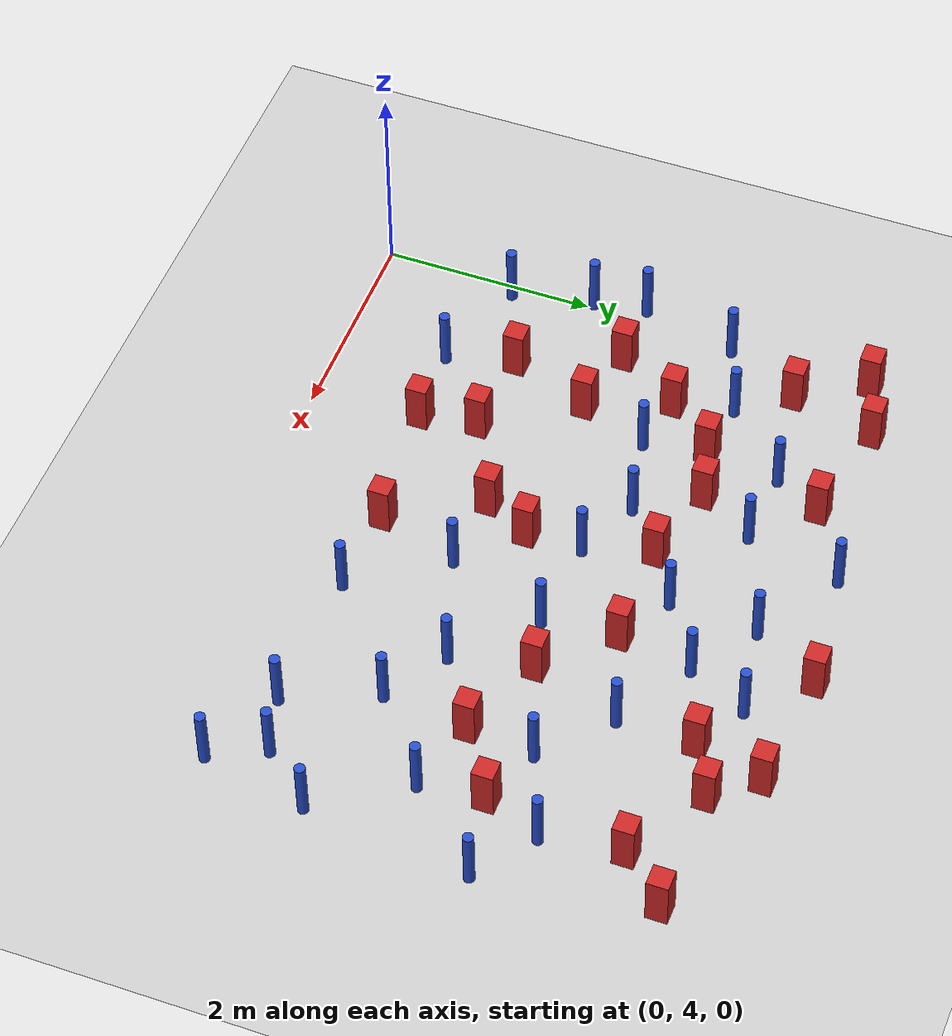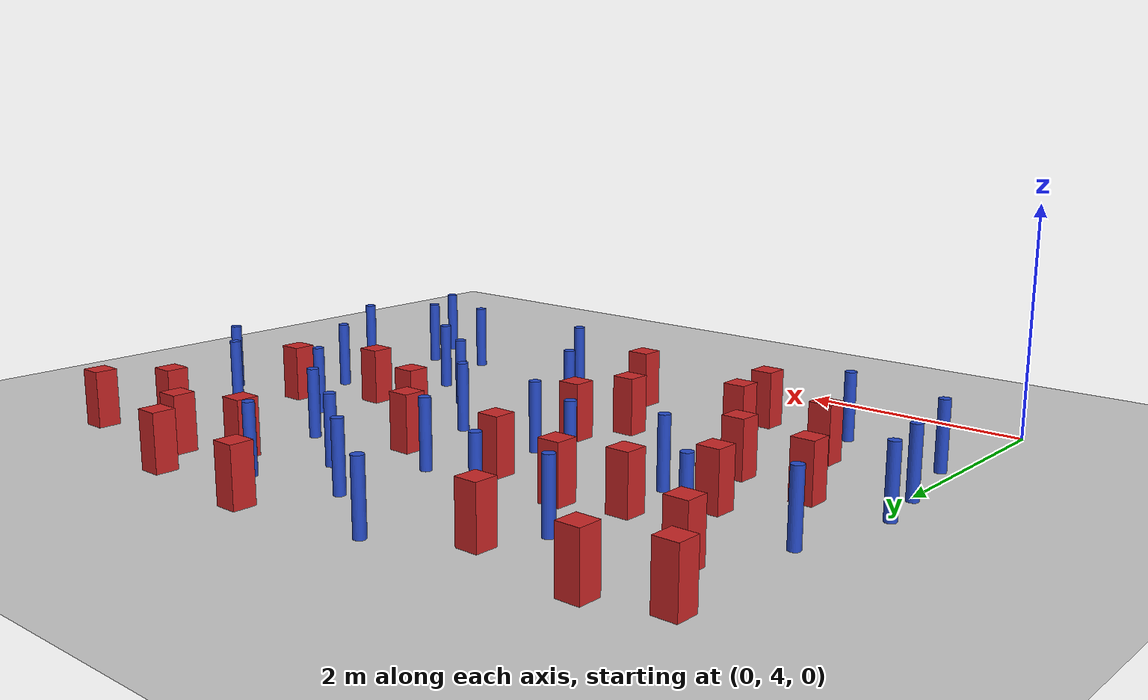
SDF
<sdf version="1.6">
 <world name="default">
  <model name="ground_plane">
   <static>1</static>
   <link name="link">
    <collision name="collision">
     <geometry><plane><normal>0 0 1</normal><size>100 100</size></plane></geometry>
     <surface><friction><ode><mu>100</mu><mu2>50</mu2></ode></friction></surface>
    </collision>
    <visual name="visual">
     <cast_shadows>0</cast_shadows>
     <geometry><plane><normal>0 0 1</normal><size>100 100</size></plane></geometry>
     <material>
      <ambient>1.0 1.0 1.0 1.0</ambient>
      <diffuse>0.8 0.8 0.8 1.0</diffuse>
      <specular>0.01 0.01 0.01 1.000000</specular>
     </material>
    </visual>
   </link>
  </model>
  <model name="pole_obstacle0">
   <static>true</static>
   <pose>3.38088649552 5.95492401007 2.88873142074e-08 -9.90536689859e-09 4.60219948989e-07 -1.20965994961e-07</pose>
   <link name="link">
    <pose>0 0 0.3 0 -0 0</pose>
    <inertial>
     <mass>1</mass>
     <inertia><ixx>0.145833</ixx><ixy>0</ixy><ixz>0</ixz><iyy>0.145833</iyy><iyz>0</iyz><izz>0.125</izz></inertia>
    </inertial>
    <collision name="collision">
     <geometry><cylinder><radius>0.05</radius><length>.6</length></cylinder></geometry>
    </collision>
    <visual name="visual">
     <geometry><cylinder><radius>0.05</radius><length>.6</length></cylinder></geometry>
     <material>
      <script><name>Gazebo/Blue</name><uri>file://media/materials/scripts/gazebo.material</uri></script>
     </material>
    </visual>
   </link>
  </model>
  <model name="pole_obstacle2">
   <static>true</static>
   <pose>1.10299102913 4.98660373761 2.88873142074e-08 -9.90536689852e-09 4.60219948989e-07 -1.2096599496e-07</pose>
   <link name="link">
    <pose>0 0 0.3 0 -0 0</pose>
    <inertial>
     <mass>1</mass>
     <inertia><ixx>0.145833</ixx><ixy>0</ixy><ixz>0</ixz><iyy>0.145833</iyy><iyz>0</iyz><izz>0.125</izz></inertia>
    </inertial>
    <collision name="collision">
     <geometry><cylinder><radius>0.05</radius><length>.6</length></cylinder></geometry>
    </collision>
    <visual name="visual">
     <geometry><cylinder><radius>0.05</radius><length>.6</length></cylinder></geometry>
     <material>
      <script><name>Gazebo/Blue</name><uri>file://media/materials/scripts/gazebo.material</uri></script>
     </material>
    </visual>
   </link>
  </model>
  <model name="pole_obstacle5">
   <static>true</static>
   <pose>1.46848950987 8.38332093595 2.88873142074e-08 -9.90536690474e-09 4.60219948974e-07 -1.2096599497e-07</pose>
   <link name="link">
    <pose>0 0 0.3 0 -0 0</pose>
    <inertial>
     <mass>1</mass>
     <inertia><ixx>0.145833</ixx><ixy>0</ixy><ixz>0</ixz><iyy>0.145833</iyy><iyz>0</iyz><izz>0.125</izz></inertia>
    </inertial>
    <collision name="collision">
     <geometry><cylinder><radius>0.05</radius><length>.6</length></cylinder></geometry>
    </collision>
    <visual name="visual">
     <geometry><cylinder><radius>0.05</radius><length>.6</length></cylinder></geometry>
     <material>
      <script><name>Gazebo/Blue</name><uri>file://media/materials/scripts/gazebo.material</uri></script>
     </material>
    </visual>
   </link>
  </model>
  <model name="square_post_obstacle13">
   <static>true</static>
   <pose>0.95175389864 5.64146808033 8.22691968438e-08 7.2212513382e-06 -7.54495500217e-07 2.29674213826e-05</pose>
   <link name="link">
    <pose>0 0 0.25 0 -0 0</pose>
    <inertial>
     <mass>100</mass>
     <inertia>
      <ixx>0.166667</ixx>
      <ixy>0</ixy>
      <ixz>0</ixz>
      <iyy>0.166667</iyy>
      <iyz>0</iyz>
      <izz>0.166667</izz>
     </inertia>
    </inertial>
    <collision name="collision"><geometry><box><size>.2 .2 .5</size></box></geometry></collision>
    <visual name="visual">
     <geometry><box><size>.2 .2 .5</size></box></geometry>
     <material>
      <script><name>Gazebo/Red</name><uri>file://media/materials/scripts/gazebo.material</uri></script>
     </material>
    </visual>
   </link>
  </model>
  <model name="pole_obstacle13">
   <static>true</static>
   <pose>5.78583768149 6.56034018607 2.88873142074e-08 -9.90536690842e-09 4.60219948965e-07 -1.20965994976e-07</pose>
   <link name="link">
    <pose>0 0 0.3 0 -0 0</pose>
    <inertial>
     <mass>1</mass>
     <inertia><ixx>0.145833</ixx><ixy>0</ixy><ixz>0</ixz><iyy>0.145833</iyy><iyz>0</iyz><izz>0.125</izz></inertia>
    </inertial>
    <collision name="collision">
     <geometry><cylinder><radius>0.05</radius><length>.6</length></cylinder></geometry>
    </collision>
    <visual name="visual">
     <geometry><cylinder><radius>0.05</radius><length>.6</length></cylinder></geometry>
     <material>
      <script><name>Gazebo/Blue</name><uri>file://media/materials/scripts/gazebo.material</uri></script>
     </material>
    </visual>
   </link>
  </model>
  <model name="pole_obstacle23">
   <static>true</static>
   <pose>5.14635958631 7.3870239795 2.88873142074e-08 -9.90536690842e-09 4.60219948965e-07 -1.20965994976e-07</pose>
   <link name="link">
    <pose>0 0 0.3 0 -0 0</pose>
    <inertial>
     <mass>1</mass>
     <inertia><ixx>0.145833</ixx><ixy>0</ixy><ixz>0</ixz><iyy>0.145833</iyy><iyz>0</iyz><izz>0.125</izz></inertia>
    </inertial>
    <collision name="collision">
     <geometry><cylinder><radius>0.05</radius><length>.6</length></cylinder></geometry>
    </collision>
    <visual name="visual">
     <geometry><cylinder><radius>0.05</radius><length>.6</length></cylinder></geometry>
     <material>
      <script><name>Gazebo/Blue</name><uri>file://media/materials/scripts/gazebo.material</uri></script>
     </material>
    </visual>
   </link>
  </model>
  <model name="pole_obstacle26">
   <static>true</static>
   <pose>6.13167573041 4.73643035613 2.88873142074e-08 -9.90536690842e-09 4.60219948965e-07 -1.20965994976e-07</pose>
   <link name="link">
    <pose>0 0 0.3 0 -0 0</pose>
    <inertial>
     <mass>1</mass>
     <inertia><ixx>0.145833</ixx><ixy>0</ixy><ixz>0</ixz><iyy>0.145833</iyy><iyz>0</iyz><izz>0.125</izz></inertia>
    </inertial>
    <collision name="collision">
     <geometry><cylinder><radius>0.05</radius><length>.6</length></cylinder></geometry>
    </collision>
    <visual name="visual">
     <geometry><cylinder><radius>0.05</radius><length>.6</length></cylinder></geometry>
     <material>
      <script><name>Gazebo/Blue</name><uri>file://media/materials/scripts/gazebo.material</uri></script>
     </material>
    </visual>
   </link>
  </model>
  <model name="pole_obstacle30">
   <static>true</static>
   <pose>1.47866368526 7.08194506718 2.88873142074e-08 -9.90536689852e-09 4.60219948989e-07 -1.2096599496e-07</pose>
   <link name="link">
    <pose>0 0 0.3 0 -0 0</pose>
    <inertial>
     <mass>1</mass>
     <inertia><ixx>0.145833</ixx><ixy>0</ixy><ixz>0</ixz><iyy>0.145833</iyy><iyz>0</iyz><izz>0.125</izz></inertia>
    </inertial>
    <collision name="collision">
     <geometry><cylinder><radius>0.05</radius><length>.6</length></cylinder></geometry>
    </collision>
    <visual name="visual">
     <geometry><cylinder><radius>0.05</radius><length>.6</length></cylinder></geometry>
     <material>
      <script><name>Gazebo/Blue</name><uri>file://media/materials/scripts/gazebo.material</uri></script>
     </material>
    </visual>
   </link>
  </model>
  <model name="square_post_obstacle43">
   <static>true</static>
   <pose>0.938892802857 7.19326686032 8.22691968438e-08 7.2212513382e-06 -7.54495500217e-07 2.29674213826e-05</pose>
   <link name="link">
    <pose>0 0 0.25 0 -0 0</pose>
    <inertial>
     <mass>100</mass>
     <inertia>
      <ixx>0.166667</ixx>
      <ixy>0</ixy>
      <ixz>0</ixz>
      <iyy>0.166667</iyy>
      <iyz>0</iyz>
      <izz>0.166667</izz>
     </inertia>
    </inertial>
    <collision name="collision"><geometry><box><size>.2 .2 .5</size></box></geometry></collision>
    <visual name="visual">
     <geometry><box><size>.2 .2 .5</size></box></geometry>
     <material>
      <script><name>Gazebo/Red</name><uri>file://media/materials/scripts/gazebo.material</uri></script>
     </material>
    </visual>
   </link>
  </model>
  <model name="pole_obstacle47">
   <static>true</static>
   <pose>5.88428137847 5.24185333775 2.88873142074e-08 -9.90536690842e-09 4.60219948965e-07 -1.20965994976e-07</pose>
   <link name="link">
    <pose>0 0 0.3 0 -0 0</pose>
    <inertial>
     <mass>1</mass>
     <inertia><ixx>0.145833</ixx><ixy>0</ixy><ixz>0</ixz><iyy>0.145833</iyy><iyz>0</iyz><izz>0.125</izz></inertia>
    </inertial>
    <collision name="collision">
     <geometry><cylinder><radius>0.05</radius><length>.6</length></cylinder></geometry>
    </collision>
    <visual name="visual">
     <geometry><cylinder><radius>0.05</radius><length>.6</length></cylinder></geometry>
     <material>
      <script><name>Gazebo/Blue</name><uri>file://media/materials/scripts/gazebo.material</uri></script>
     </material>
    </visual>
   </link>
  </model>
  <model name="square_post_obstacle59">
   <static>true</static>
   <pose>2.64501227558 6.01338427412 8.22691968438e-08 7.2212513382e-06 -7.54495500217e-07 2.29674213826e-05</pose>
   <link name="link">
    <pose>0 0 0.25 0 -0 0</pose>
    <inertial>
     <mass>100</mass>
     <inertia>
      <ixx>0.166667</ixx>
      <ixy>0</ixy>
      <ixz>0</ixz>
      <iyy>0.166667</iyy>
      <iyz>0</iyz>
      <izz>0.166667</izz>
     </inertia>
    </inertial>
    <collision name="collision"><geometry><box><size>.2 .2 .5</size></box></geometry></collision>
    <visual name="visual">
     <geometry><box><size>.2 .2 .5</size></box></geometry>
     <material>
      <script><name>Gazebo/Red</name><uri>file://media/materials/scripts/gazebo.material</uri></script>
     </material>
    </visual>
   </link>
  </model>
  <model name="square_post_obstacle69">
   <static>true</static>
   <pose>1.79964512608 5.58982391042 8.22691968438e-08 7.2212513382e-06 -7.54495500217e-07 2.29674213826e-05</pose>
   <link name="link">
    <pose>0 0 0.25 0 -0 0</pose>
    <inertial>
     <mass>100</mass>
     <inertia>
      <ixx>0.166667</ixx>
      <ixy>0</ixy>
      <ixz>0</ixz>
      <iyy>0.166667</iyy>
      <iyz>0</iyz>
      <izz>0.166667</izz>
     </inertia>
    </inertial>
    <collision name="collision"><geometry><box><size>.2 .2 .5</size></box></geometry></collision>
    <visual name="visual">
     <geometry><box><size>.2 .2 .5</size></box></geometry>
     <material>
      <script><name>Gazebo/Red</name><uri>file://media/materials/scripts/gazebo.material</uri></script>
     </material>
    </visual>
   </link>
  </model>
  <model name="square_post_obstacle73">
   <static>true</static>
   <pose>4.55959793608 8.65913546967 8.22691968438e-08 7.22125133819e-06 -7.54495500217e-07 2.29674213826e-05</pose>
   <link name="link">
    <pose>0 0 0.25 0 -0 0</pose>
    <inertial>
     <mass>100</mass>
     <inertia>
      <ixx>0.166667</ixx>
      <ixy>0</ixy>
      <ixz>0</ixz>
      <iyy>0.166667</iyy>
      <iyz>0</iyz>
      <izz>0.166667</izz>
     </inertia>
    </inertial>
    <collision name="collision"><geometry><box><size>.2 .2 .5</size></box></geometry></collision>
    <visual name="visual">
     <geometry><box><size>.2 .2 .5</size></box></geometry>
     <material>
      <script><name>Gazebo/Red</name><uri>file://media/materials/scripts/gazebo.material</uri></script>
     </material>
    </visual>
   </link>
  </model>
  <model name="square_post_obstacle75">
   <static>true</static>
   <pose>3.68525917704 7.64865767655 8.22691968438e-08 7.2212513382e-06 -7.54495500217e-07 2.29674213826e-05</pose>
   <link name="link">
    <pose>0 0 0.25 0 -0 0</pose>
    <inertial>
     <mass>100</mass>
     <inertia>
      <ixx>0.166667</ixx>
      <ixy>0</ixy>
      <ixz>0</ixz>
      <iyy>0.166667</iyy>
      <iyz>0</iyz>
      <izz>0.166667</izz>
     </inertia>
    </inertial>
    <collision name="collision"><geometry><box><size>.2 .2 .5</size></box></geometry></collision>
    <visual name="visual">
     <geometry><box><size>.2 .2 .5</size></box></geometry>
     <material>
      <script><name>Gazebo/Red</name><uri>file://media/materials/scripts/gazebo.material</uri></script>
     </material>
    </visual>
   </link>
  </model>
  <model name="pole_obstacle78">
   <static>true</static>
   <pose>2.200280439 8.34595612283 2.88873142074e-08 -9.90536692318e-09 4.6021994893e-07 -1.20965994988e-07</pose>
   <link name="link">
    <pose>0 0 0.3 0 -0 0</pose>
    <inertial>
     <mass>1</mass>
     <inertia><ixx>0.145833</ixx><ixy>0</ixy><ixz>0</ixz><iyy>0.145833</iyy><iyz>0</iyz><izz>0.125</izz></inertia>
    </inertial>
    <collision name="collision">
     <geometry><cylinder><radius>0.05</radius><length>.6</length></cylinder></geometry>
    </collision>
    <visual name="visual">
     <geometry><cylinder><radius>0.05</radius><length>.6</length></cylinder></geometry>
     <material>
      <script><name>Gazebo/Blue</name><uri>file://media/materials/scripts/gazebo.material</uri></script>
     </material>
    </visual>
   </link>
  </model>
  <model name="square_post_obstacle82">
   <static>true</static>
   <pose>6.2535723111 8.92052852105 8.22691968438e-08 7.22125133819e-06 -7.54495500217e-07 2.29674213826e-05</pose>
   <link name="link">
    <pose>0 0 0.25 0 -0 0</pose>
    <inertial>
     <mass>100</mass>
     <inertia>
      <ixx>0.166667</ixx>
      <ixy>0</ixy>
      <ixz>0</ixz>
      <iyy>0.166667</iyy>
      <iyz>0</iyz>
      <izz>0.166667</izz>
     </inertia>
    </inertial>
    <collision name="collision"><geometry><box><size>.2 .2 .5</size></box></geometry></collision>
    <visual name="visual">
     <geometry><box><size>.2 .2 .5</size></box></geometry>
     <material>
      <script><name>Gazebo/Red</name><uri>file://media/materials/scripts/gazebo.material</uri></script>
     </material>
    </visual>
   </link>
  </model>
  <model name="pole_obstacle92">
   <static>true</static>
   <pose>5.94006798841 7.72018438921 2.88873142074e-08 -9.90536690842e-09 4.60219948965e-07 -1.20965994976e-07</pose>
   <link name="link">
    <pose>0 0 0.3 0 -0 0</pose>
    <inertial>
     <mass>1</mass>
     <inertia><ixx>0.145833</ixx><ixy>0</ixy><ixz>0</ixz><iyy>0.145833</iyy><iyz>0</iyz><izz>0.125</izz></inertia>
    </inertial>
    <collision name="collision">
     <geometry><cylinder><radius>0.05</radius><length>.6</length></cylinder></geometry>
    </collision>
    <visual name="visual">
     <geometry><cylinder><radius>0.05</radius><length>.6</length></cylinder></geometry>
     <material>
      <script><name>Gazebo/Blue</name><uri>file://media/materials/scripts/gazebo.material</uri></script>
     </material>
    </visual>
   </link>
  </model>
  <model name="square_post_obstacle95">
   <static>true</static>
   <pose>5.08554293708 6.75795700899 8.22691968438e-08 7.2212513382e-06 -7.54495500217e-07 2.29674213826e-05</pose>
   <link name="link">
    <pose>0 0 0.25 0 -0 0</pose>
    <inertial>
     <mass>100</mass>
     <inertia>
      <ixx>0.166667</ixx>
      <ixy>0</ixy>
      <ixz>0</ixz>
      <iyy>0.166667</iyy>
      <iyz>0</iyz>
      <izz>0.166667</izz>
     </inertia>
    </inertial>
    <collision name="collision"><geometry><box><size>.2 .2 .5</size></box></geometry></collision>
    <visual name="visual">
     <geometry><box><size>.2 .2 .5</size></box></geometry>
     <material>
      <script><name>Gazebo/Red</name><uri>file://media/materials/scripts/gazebo.material</uri></script>
     </material>
    </visual>
   </link>
  </model>
  <model name="pole_obstacle114">
   <static>true</static>
   <pose>4.07547584275 8.92687675746 2.88873142074e-08 -9.9053668967e-09 4.60219948993e-07 -1.20965994957e-07</pose>
   <link name="link">
    <pose>0 0 0.3 0 -0 0</pose>
    <inertial>
     <mass>1</mass>
     <inertia><ixx>0.145833</ixx><ixy>0</ixy><ixz>0</ixz><iyy>0.145833</iyy><iyz>0</iyz><izz>0.125</izz></inertia>
    </inertial>
    <collision name="collision">
     <geometry><cylinder><radius>0.05</radius><length>.6</length></cylinder></geometry>
    </collision>
    <visual name="visual">
     <geometry><cylinder><radius>0.05</radius><length>.6</length></cylinder></geometry>
     <material>
      <script><name>Gazebo/Blue</name><uri>file://media/materials/scripts/gazebo.material</uri></script>
     </material>
    </visual>
   </link>
  </model>
  <model name="pole_obstacle116">
   <static>true</static>
   <pose>3.75448452573 6.93231385805 2.88873142074e-08 -9.90536689859e-09 4.60219948989e-07 -1.20965994961e-07</pose>
   <link name="link">
    <pose>0 0 0.3 0 -0 0</pose>
    <inertial>
     <mass>1</mass>
     <inertia><ixx>0.145833</ixx><ixy>0</ixy><ixz>0</ixz><iyy>0.145833</iyy><iyz>0</iyz><izz>0.125</izz></inertia>
    </inertial>
    <collision name="collision">
     <geometry><cylinder><radius>0.05</radius><length>.6</length></cylinder></geometry>
    </collision>
    <visual name="visual">
     <geometry><cylinder><radius>0.05</radius><length>.6</length></cylinder></geometry>
     <material>
      <script><name>Gazebo/Blue</name><uri>file://media/materials/scripts/gazebo.material</uri></script>
     </material>
    </visual>
   </link>
  </model>
  <model name="square_post_obstacle103">
   <static>true</static>
   <pose>3.57993323454 9.41809294122 8.22691968438e-08 7.22125133819e-06 -7.54495500217e-07 2.29674213826e-05</pose>
   <link name="link">
    <pose>0 0 0.25 0 -0 0</pose>
    <inertial>
     <mass>100</mass>
     <inertia>
      <ixx>0.166667</ixx>
      <ixy>0</ixy>
      <ixz>0</ixz>
      <iyy>0.166667</iyy>
      <iyz>0</iyz>
      <izz>0.166667</izz>
     </inertia>
    </inertial>
    <collision name="collision"><geometry><box><size>.2 .2 .5</size></box></geometry></collision>
    <visual name="visual">
     <geometry><box><size>.2 .2 .5</size></box></geometry>
     <material>
      <script><name>Gazebo/Red</name><uri>file://media/materials/scripts/gazebo.material</uri></script>
     </material>
    </visual>
   </link>
  </model>
  <model name="square_post_obstacle106">
   <static>true</static>
   <pose>0.0813641973204 8.83876345615 8.22691968438e-08 7.22125133819e-06 -7.54495500217e-07 2.29674213826e-05</pose>
   <link name="link">
    <pose>0 0 0.25 0 -0 0</pose>
    <inertial>
     <mass>100</mass>
     <inertia>
      <ixx>0.166667</ixx>
      <ixy>0</ixy>
      <ixz>0</ixz>
      <iyy>0.166667</iyy>
      <iyz>0</iyz>
      <izz>0.166667</izz>
     </inertia>
    </inertial>
    <collision name="collision"><geometry><box><size>.2 .2 .5</size></box></geometry></collision>
    <visual name="visual">
     <geometry><box><size>.2 .2 .5</size></box></geometry>
     <material>
      <script><name>Gazebo/Red</name><uri>file://media/materials/scripts/gazebo.material</uri></script>
     </material>
    </visual>
   </link>
  </model>
  <model name="pole_obstacle119">
   <static>true</static>
   <pose>3.21026652588 8.76508350712 2.88873142074e-08 -9.90536692318e-09 4.6021994893e-07 -1.20965994988e-07</pose>
   <link name="link">
    <pose>0 0 0.3 0 -0 0</pose>
    <inertial>
     <mass>1</mass>
     <inertia><ixx>0.145833</ixx><ixy>0</ixy><ixz>0</ixz><iyy>0.145833</iyy><iyz>0</iyz><izz>0.125</izz></inertia>
    </inertial>
    <collision name="collision">
     <geometry><cylinder><radius>0.05</radius><length>.6</length></cylinder></geometry>
    </collision>
    <visual name="visual">
     <geometry><cylinder><radius>0.05</radius><length>.6</length></cylinder></geometry>
     <material>
      <script><name>Gazebo/Blue</name><uri>file://media/materials/scripts/gazebo.material</uri></script>
     </material>
    </visual>
   </link>
  </model>
  <model name="square_post_obstacle108">
   <static>true</static>
   <pose>3.13506172635 5.17868784558 8.22691968438e-08 7.2212513382e-06 -7.54495500217e-07 2.29674213826e-05</pose>
   <link name="link">
    <pose>0 0 0.25 0 -0 0</pose>
    <inertial>
     <mass>100</mass>
     <inertia>
      <ixx>0.166667</ixx>
      <ixy>0</ixy>
      <ixz>0</ixz>
      <iyy>0.166667</iyy>
      <iyz>0</iyz>
      <izz>0.166667</izz>
     </inertia>
    </inertial>
    <collision name="collision"><geometry><box><size>.2 .2 .5</size></box></geometry></collision>
    <visual name="visual">
     <geometry><box><size>.2 .2 .5</size></box></geometry>
     <material>
      <script><name>Gazebo/Red</name><uri>file://media/materials/scripts/gazebo.material</uri></script>
     </material>
    </visual>
   </link>
  </model>
  <model name="square_post_obstacle111">
   <static>true</static>
   <pose>1.70246118494 8.84544357507 8.22691968438e-08 7.22125133819e-06 -7.54495500217e-07 2.29674213826e-05</pose>
   <link name="link">
    <pose>0 0 0.25 0 -0 0</pose>
    <inertial>
     <mass>100</mass>
     <inertia>
      <ixx>0.166667</ixx>
      <ixy>0</ixy>
      <ixz>0</ixz>
      <iyy>0.166667</iyy>
      <iyz>0</iyz>
      <izz>0.166667</izz>
     </inertia>
    </inertial>
    <collision name="collision"><geometry><box><size>.2 .2 .5</size></box></geometry></collision>
    <visual name="visual">
     <geometry><box><size>.2 .2 .5</size></box></geometry>
     <material>
      <script><name>Gazebo/Red</name><uri>file://media/materials/scripts/gazebo.material</uri></script>
     </material>
    </visual>
   </link>
  </model>
  <model name="pole_obstacle126">
   <static>true</static>
   <pose>2.40459212481 9.25607514439 2.88873142074e-08 -9.90536692318e-09 4.6021994893e-07 -1.20965994988e-07</pose>
   <link name="link">
    <pose>0 0 0.3 0 -0 0</pose>
    <inertial>
     <mass>1</mass>
     <inertia><ixx>0.145833</ixx><ixy>0</ixy><ixz>0</ixz><iyy>0.145833</iyy><iyz>0</iyz><izz>0.125</izz></inertia>
    </inertial>
    <collision name="collision">
     <geometry><cylinder><radius>0.05</radius><length>.6</length></cylinder></geometry>
    </collision>
    <visual name="visual">
     <geometry><cylinder><radius>0.05</radius><length>.6</length></cylinder></geometry>
     <material>
      <script><name>Gazebo/Blue</name><uri>file://media/materials/scripts/gazebo.material</uri></script>
     </material>
    </visual>
   </link>
  </model>
  <model name="square_post_obstacle124">
   <static>true</static>
   <pose>4.73186916265 9.31856514922 8.22691968438e-08 7.22125133819e-06 -7.54495500217e-07 2.29674213826e-05</pose>
   <link name="link">
    <pose>0 0 0.25 0 -0 0</pose>
    <inertial>
     <mass>100</mass>
     <inertia>
      <ixx>0.166667</ixx>
      <ixy>0</ixy>
      <ixz>0</ixz>
      <iyy>0.166667</iyy>
      <iyz>0</iyz>
      <izz>0.166667</izz>
     </inertia>
    </inertial>
    <collision name="collision"><geometry><box><size>.2 .2 .5</size></box></geometry></collision>
    <visual name="visual">
     <geometry><box><size>.2 .2 .5</size></box></geometry>
     <material>
      <script><name>Gazebo/Red</name><uri>file://media/materials/scripts/gazebo.material</uri></script>
     </material>
    </visual>
   </link>
  </model>
  <model name="square_post_obstacle129">
   <static>true</static>
   <pose>1.2456638371 6.426574555 8.22691968438e-08 7.2212513382e-06 -7.54495500217e-07 2.29674213826e-05</pose>
   <link name="link">
    <pose>0 0 0.25 0 -0 0</pose>
    <inertial>
     <mass>100</mass>
     <inertia>
      <ixx>0.166667</ixx>
      <ixy>0</ixy>
      <ixz>0</ixz>
      <iyy>0.166667</iyy>
      <iyz>0</iyz>
      <izz>0.166667</izz>
     </inertia>
    </inertial>
    <collision name="collision"><geometry><box><size>.2 .2 .5</size></box></geometry></collision>
    <visual name="visual">
     <geometry><box><size>.2 .2 .5</size></box></geometry>
     <material>
      <script><name>Gazebo/Red</name><uri>file://media/materials/scripts/gazebo.material</uri></script>
     </material>
    </visual>
   </link>
  </model>
  <model name="pole_obstacle142">
   <static>true</static>
   <pose>0.0997201835289 7.47872974371 2.88873142074e-08 -9.90536689742e-09 4.60219948992e-07 -1.2096599496e-07</pose>
   <link name="link">
    <pose>0 0 0.3 0 -0 0</pose>
    <inertial>
     <mass>1</mass>
     <inertia><ixx>0.145833</ixx><ixy>0</ixy><ixz>0</ixz><iyy>0.145833</iyy><iyz>0</iyz><izz>0.125</izz></inertia>
    </inertial>
    <collision name="collision">
     <geometry><cylinder><radius>0.05</radius><length>.6</length></cylinder></geometry>
    </collision>
    <visual name="visual">
     <geometry><cylinder><radius>0.05</radius><length>.6</length></cylinder></geometry>
     <material>
      <script><name>Gazebo/Blue</name><uri>file://media/materials/scripts/gazebo.material</uri></script>
     </material>
    </visual>
   </link>
  </model>
  <model name="square_post_obstacle130">
   <static>true</static>
   <pose>5.83912150346 8.47420436639 8.22691968438e-08 7.22125133819e-06 -7.54495500217e-07 2.29674213826e-05</pose>
   <link name="link">
    <pose>0 0 0.25 0 -0 0</pose>
    <inertial>
     <mass>100</mass>
     <inertia>
      <ixx>0.166667</ixx>
      <ixy>0</ixy>
      <ixz>0</ixz>
      <iyy>0.166667</iyy>
      <iyz>0</iyz>
      <izz>0.166667</izz>
     </inertia>
    </inertial>
    <collision name="collision"><geometry><box><size>.2 .2 .5</size></box></geometry></collision>
    <visual name="visual">
     <geometry><box><size>.2 .2 .5</size></box></geometry>
     <material>
      <script><name>Gazebo/Red</name><uri>file://media/materials/scripts/gazebo.material</uri></script>
     </material>
    </visual>
   </link>
  </model>
  <model name="square_post_obstacle137">
   <static>true</static>
   <pose>2.68470598316 7.63084147873 8.22691968438e-08 7.2212513382e-06 -7.54495500217e-07 2.29674213826e-05</pose>
   <link name="link">
    <pose>0 0 0.25 0 -0 0</pose>
    <inertial>
     <mass>100</mass>
     <inertia>
      <ixx>0.166667</ixx>
      <ixy>0</ixy>
      <ixz>0</ixz>
      <iyy>0.166667</iyy>
      <iyz>0</iyz>
      <izz>0.166667</izz>
     </inertia>
    </inertial>
    <collision name="collision"><geometry><box><size>.2 .2 .5</size></box></geometry></collision>
    <visual name="visual">
     <geometry><box><size>.2 .2 .5</size></box></geometry>
     <material>
      <script><name>Gazebo/Red</name><uri>file://media/materials/scripts/gazebo.material</uri></script>
     </material>
    </visual>
   </link>
  </model>
  <model name="pole_obstacle153">
   <static>true</static>
   <pose>-0.0300622368494 6.05876144259 2.88873142074e-08 -9.90536689599e-09 4.60219948995e-07 -1.20965994958e-07</pose>
   <link name="link">
    <pose>0 0 0.3 0 -0 0</pose>
    <inertial>
     <mass>1</mass>
     <inertia><ixx>0.145833</ixx><ixy>0</ixy><ixz>0</ixz><iyy>0.145833</iyy><iyz>0</iyz><izz>0.125</izz></inertia>
    </inertial>
    <collision name="collision">
     <geometry><cylinder><radius>0.05</radius><length>.6</length></cylinder></geometry>
    </collision>
    <visual name="visual">
     <geometry><cylinder><radius>0.05</radius><length>.6</length></cylinder></geometry>
     <material>
      <script><name>Gazebo/Blue</name><uri>file://media/materials/scripts/gazebo.material</uri></script>
     </material>
    </visual>
   </link>
  </model>
  <model name="pole_obstacle155">
   <static>true</static>
   <pose>4.55095674075 7.92322340636 2.88873142074e-08 -9.90536690842e-09 4.60219948965e-07 -1.20965994976e-07</pose>
   <link name="link">
    <pose>0 0 0.3 0 -0 0</pose>
    <inertial>
     <mass>1</mass>
     <inertia><ixx>0.145833</ixx><ixy>0</ixy><ixz>0</ixz><iyy>0.145833</iyy><iyz>0</iyz><izz>0.125</izz></inertia>
    </inertial>
    <collision name="collision">
     <geometry><cylinder><radius>0.05</radius><length>.6</length></cylinder></geometry>
    </collision>
    <visual name="visual">
     <geometry><cylinder><radius>0.05</radius><length>.6</length></cylinder></geometry>
     <material>
      <script><name>Gazebo/Blue</name><uri>file://media/materials/scripts/gazebo.material</uri></script>
     </material>
    </visual>
   </link>
  </model>
  <model name="square_post_obstacle151">
   <static>true</static>
   <pose>1.89209022832 7.82005135885 8.22691968438e-08 7.2212513382e-06 -7.54495500217e-07 2.29674213826e-05</pose>
   <link name="link">
    <pose>0 0 0.25 0 -0 0</pose>
    <inertial>
     <mass>100</mass>
     <inertia>
      <ixx>0.166667</ixx>
      <ixy>0</ixy>
      <ixz>0</ixz>
      <iyy>0.166667</iyy>
      <iyz>0</iyz>
      <izz>0.166667</izz>
     </inertia>
    </inertial>
    <collision name="collision"><geometry><box><size>.2 .2 .5</size></box></geometry></collision>
    <visual name="visual">
     <geometry><box><size>.2 .2 .5</size></box></geometry>
     <material>
      <script><name>Gazebo/Red</name><uri>file://media/materials/scripts/gazebo.material</uri></script>
     </material>
    </visual>
   </link>
  </model>
  <model name="pole_obstacle159">
   <static>true</static>
   <pose>3.80726948114 8.35055178526 2.88873142074e-08 -9.90536692318e-09 4.6021994893e-07 -1.20965994988e-07</pose>
   <link name="link">
    <pose>0 0 0.3 0 -0 0</pose>
    <inertial>
     <mass>1</mass>
     <inertia><ixx>0.145833</ixx><ixy>0</ixy><ixz>0</ixz><iyy>0.145833</iyy><iyz>0</iyz><izz>0.125</izz></inertia>
    </inertial>
    <collision name="collision">
     <geometry><cylinder><radius>0.05</radius><length>.6</length></cylinder></geometry>
    </collision>
    <visual name="visual">
     <geometry><cylinder><radius>0.05</radius><length>.6</length></cylinder></geometry>
     <material>
      <script><name>Gazebo/Blue</name><uri>file://media/materials/scripts/gazebo.material</uri></script>
     </material>
    </visual>
   </link>
  </model>
  <model name="square_post_obstacle153">
   <static>true</static>
   <pose>5.0624187827 8.919789665 8.22691968438e-08 7.22125133819e-06 -7.54495500217e-07 2.29674213826e-05</pose>
   <link name="link">
    <pose>0 0 0.25 0 -0 0</pose>
    <inertial>
     <mass>100</mass>
     <inertia>
      <ixx>0.166667</ixx>
      <ixy>0</ixy>
      <ixz>0</ixz>
      <iyy>0.166667</iyy>
      <iyz>0</iyz>
      <izz>0.166667</izz>
     </inertia>
    </inertial>
    <collision name="collision"><geometry><box><size>.2 .2 .5</size></box></geometry></collision>
    <visual name="visual">
     <geometry><box><size>.2 .2 .5</size></box></geometry>
     <material>
      <script><name>Gazebo/Red</name><uri>file://media/materials/scripts/gazebo.material</uri></script>
     </material>
    </visual>
   </link>
  </model>
  <model name="pole_obstacle160">
   <static>true</static>
   <pose>4.99743004519 5.9352025164 2.88873142074e-08 -9.90536690842e-09 4.60219948965e-07 -1.20965994976e-07</pose>
   <link name="link">
    <pose>0 0 0.3 0 -0 0</pose>
    <inertial>
     <mass>1</mass>
     <inertia><ixx>0.145833</ixx><ixy>0</ixy><ixz>0</ixz><iyy>0.145833</iyy><iyz>0</iyz><izz>0.125</izz></inertia>
    </inertial>
    <collision name="collision">
     <geometry><cylinder><radius>0.05</radius><length>.6</length></cylinder></geometry>
    </collision>
    <visual name="visual">
     <geometry><cylinder><radius>0.05</radius><length>.6</length></cylinder></geometry>
     <material>
      <script><name>Gazebo/Blue</name><uri>file://media/materials/scripts/gazebo.material</uri></script>
     </material>
    </visual>
   </link>
  </model>
  <model name="pole_obstacle161">
   <static>true</static>
   <pose>6.4968401971 7.31665546907 2.88873142074e-08 -9.90536690842e-09 4.60219948965e-07 -1.20965994976e-07</pose>
   <link name="link">
    <pose>0 0 0.3 0 -0 0</pose>
    <inertial>
     <mass>1</mass>
     <inertia><ixx>0.145833</ixx><ixy>0</ixy><ixz>0</ixz><iyy>0.145833</iyy><iyz>0</iyz><izz>0.125</izz></inertia>
    </inertial>
    <collision name="collision">
     <geometry><cylinder><radius>0.05</radius><length>.6</length></cylinder></geometry>
    </collision>
    <visual name="visual">
     <geometry><cylinder><radius>0.05</radius><length>.6</length></cylinder></geometry>
     <material>
      <script><name>Gazebo/Blue</name><uri>file://media/materials/scripts/gazebo.material</uri></script>
     </material>
    </visual>
   </link>
  </model>
  <model name="square_post_obstacle154">
   <static>true</static>
   <pose>0.548162527311 6.57254299517 8.22691968438e-08 7.2212513382e-06 -7.54495500217e-07 2.29674213826e-05</pose>
   <link name="link">
    <pose>0 0 0.25 0 -0 0</pose>
    <inertial>
     <mass>100</mass>
     <inertia>
      <ixx>0.166667</ixx>
      <ixy>0</ixy>
      <ixz>0</ixz>
      <iyy>0.166667</iyy>
      <iyz>0</iyz>
      <izz>0.166667</izz>
     </inertia>
    </inertial>
    <collision name="collision"><geometry><box><size>.2 .2 .5</size></box></geometry></collision>
    <visual name="visual">
     <geometry><box><size>.2 .2 .5</size></box></geometry>
     <material>
      <script><name>Gazebo/Red</name><uri>file://media/materials/scripts/gazebo.material</uri></script>
     </material>
    </visual>
   </link>
  </model>
  <model name="square_post_obstacle155">
   <static>true</static>
   <pose>5.72083118737 7.17320606396 8.22691968438e-08 7.2212513382e-06 -7.54495500217e-07 2.29674213826e-05</pose>
   <link name="link">
    <pose>0 0 0.25 0 -0 0</pose>
    <inertial>
     <mass>100</mass>
     <inertia>
      <ixx>0.166667</ixx>
      <ixy>0</ixy>
      <ixz>0</ixz>
      <iyy>0.166667</iyy>
      <iyz>0</iyz>
      <izz>0.166667</izz>
     </inertia>
    </inertial>
    <collision name="collision"><geometry><box><size>.2 .2 .5</size></box></geometry></collision>
    <visual name="visual">
     <geometry><box><size>.2 .2 .5</size></box></geometry>
     <material>
      <script><name>Gazebo/Red</name><uri>file://media/materials/scripts/gazebo.material</uri></script>
     </material>
    </visual>
   </link>
  </model>
  <model name="square_post_obstacle156">
   <static>true</static>
   <pose>0.467368828867 8.21593056862 8.22691968438e-08 7.22125133819e-06 -7.54495500217e-07 2.29674213826e-05</pose>
   <link name="link">
    <pose>0 0 0.25 0 -0 0</pose>
    <inertial>
     <mass>100</mass>
     <inertia>
      <ixx>0.166667</ixx>
      <ixy>0</ixy>
      <ixz>0</ixz>
      <iyy>0.166667</iyy>
      <iyz>0</iyz>
      <izz>0.166667</izz>
     </inertia>
    </inertial>
    <collision name="collision"><geometry><box><size>.2 .2 .5</size></box></geometry></collision>
    <visual name="visual">
     <geometry><box><size>.2 .2 .5</size></box></geometry>
     <material>
      <script><name>Gazebo/Red</name><uri>file://media/materials/scripts/gazebo.material</uri></script>
     </material>
    </visual>
   </link>
  </model>
  <model name="square_post_obstacle157">
   <static>true</static>
   <pose>4.26265603066 7.06932677295 8.22691968438e-08 7.2212513382e-06 -7.54495500217e-07 2.29674213826e-05</pose>
   <link name="link">
    <pose>0 0 0.25 0 -0 0</pose>
    <inertial>
     <mass>100</mass>
     <inertia>
      <ixx>0.166667</ixx>
      <ixy>0</ixy>
      <ixz>0</ixz>
      <iyy>0.166667</iyy>
      <iyz>0</iyz>
      <izz>0.166667</izz>
     </inertia>
    </inertial>
    <collision name="collision"><geometry><box><size>.2 .2 .5</size></box></geometry></collision>
    <visual name="visual">
     <geometry><box><size>.2 .2 .5</size></box></geometry>
     <material>
      <script><name>Gazebo/Red</name><uri>file://media/materials/scripts/gazebo.material</uri></script>
     </material>
    </visual>
   </link>
  </model>
  <model name="pole_obstacle165">
   <static>true</static>
   <pose>5.34564958857 5.08819883248 2.88873142074e-08 -9.90536690842e-09 4.60219948965e-07 -1.20965994976e-07</pose>
   <link name="link">
    <pose>0 0 0.3 0 -0 0</pose>
    <inertial>
     <mass>1</mass>
     <inertia><ixx>0.145833</ixx><ixy>0</ixy><ixz>0</ixz><iyy>0.145833</iyy><iyz>0</iyz><izz>0.125</izz></inertia>
    </inertial>
    <collision name="collision">
     <geometry><cylinder><radius>0.05</radius><length>.6</length></cylinder></geometry>
    </collision>
    <visual name="visual">
     <geometry><cylinder><radius>0.05</radius><length>.6</length></cylinder></geometry>
     <material>
      <script><name>Gazebo/Blue</name><uri>file://media/materials/scripts/gazebo.material</uri></script>
     </material>
    </visual>
   </link>
  </model>
  <model name="pole_obstacle173">
   <static>true</static>
   <pose>2.25024998386 7.25552421115 2.88873142074e-08 -9.90536689859e-09 4.60219948989e-07 -1.20965994961e-07</pose>
   <link name="link">
    <pose>0 0 0.3 0 -0 0</pose>
    <inertial>
     <mass>1</mass>
     <inertia><ixx>0.145833</ixx><ixy>0</ixy><ixz>0</ixz><iyy>0.145833</iyy><iyz>0</iyz><izz>0.125</izz></inertia>
    </inertial>
    <collision name="collision">
     <geometry><cylinder><radius>0.05</radius><length>.6</length></cylinder></geometry>
    </collision>
    <visual name="visual">
     <geometry><cylinder><radius>0.05</radius><length>.6</length></cylinder></geometry>
     <material>
      <script><name>Gazebo/Blue</name><uri>file://media/materials/scripts/gazebo.material</uri></script>
     </material>
    </visual>
   </link>
  </model>
  <model name="pole_obstacle174">
   <static>true</static>
   <pose>3.97011448453 5.12423207666 2.88873142074e-08 -9.90536690327e-09 4.60219948978e-07 -1.20965994969e-07</pose>
   <link name="link">
    <pose>0 0 0.3 0 -0 0</pose>
    <inertial>
     <mass>1</mass>
     <inertia><ixx>0.145833</ixx><ixy>0</ixy><ixz>0</ixz><iyy>0.145833</iyy><iyz>0</iyz><izz>0.125</izz></inertia>
    </inertial>
    <collision name="collision">
     <geometry><cylinder><radius>0.05</radius><length>.6</length></cylinder></geometry>
    </collision>
    <visual name="visual">
     <geometry><cylinder><radius>0.05</radius><length>.6</length></cylinder></geometry>
     <material>
      <script><name>Gazebo/Blue</name><uri>file://media/materials/scripts/gazebo.material</uri></script>
     </material>
    </visual>
   </link>
  </model>
  <model name="pole_obstacle179">
   <static>true</static>
   <pose>6.33344059226 5.74004611774 2.88873142074e-08 -9.90536690842e-09 4.60219948965e-07 -1.20965994976e-07</pose>
   <link name="link">
    <pose>0 0 0.3 0 -0 0</pose>
    <inertial>
     <mass>1</mass>
     <inertia><ixx>0.145833</ixx><ixy>0</ixy><ixz>0</ixz><iyy>0.145833</iyy><iyz>0</iyz><izz>0.125</izz></inertia>
    </inertial>
    <collision name="collision">
     <geometry><cylinder><radius>0.05</radius><length>.6</length></cylinder></geometry>
    </collision>
    <visual name="visual">
     <geometry><cylinder><radius>0.05</radius><length>.6</length></cylinder></geometry>
     <material>
      <script><name>Gazebo/Blue</name><uri>file://media/materials/scripts/gazebo.material</uri></script>
     </material>
    </visual>
   </link>
  </model>
  <model name="square_post_obstacle171">
   <static>true</static>
   <pose>0.660435019244 9.03088005792 8.22691968438e-08 7.22125133819e-06 -7.54495500217e-07 2.29674213826e-05</pose>
   <link name="link">
    <pose>0 0 0.25 0 -0 0</pose>
    <inertial>
     <mass>100</mass>
     <inertia>
      <ixx>0.166667</ixx>
      <ixy>0</ixy>
      <ixz>0</ixz>
      <iyy>0.166667</iyy>
      <iyz>0</iyz>
      <izz>0.166667</izz>
     </inertia>
    </inertial>
    <collision name="collision"><geometry><box><size>.2 .2 .5</size></box></geometry></collision>
    <visual name="visual">
     <geometry><box><size>.2 .2 .5</size></box></geometry>
     <material>
      <script><name>Gazebo/Red</name><uri>file://media/materials/scripts/gazebo.material</uri></script>
     </material>
    </visual>
   </link>
  </model>
  <model name="pole_obstacle183">
   <static>true</static>
   <pose>0.797473026183 7.74024729841 2.88873142074e-08 -9.90536689661e-09 4.60219948993e-07 -1.20965994957e-07</pose>
   <link name="link">
    <pose>0 0 0.3 0 -0 0</pose>
    <inertial>
     <mass>1</mass>
     <inertia><ixx>0.145833</ixx><ixy>0</ixy><ixz>0</ixz><iyy>0.145833</iyy><iyz>0</iyz><izz>0.125</izz></inertia>
    </inertial>
    <collision name="collision">
     <geometry><cylinder><radius>0.05</radius><length>.6</length></cylinder></geometry>
    </collision>
    <visual name="visual">
     <geometry><cylinder><radius>0.05</radius><length>.6</length></cylinder></geometry>
     <material>
      <script><name>Gazebo/Blue</name><uri>file://media/materials/scripts/gazebo.material</uri></script>
     </material>
    </visual>
   </link>
  </model>
  <model name="pole_obstacle185">
   <static>true</static>
   <pose>4.41443672898 6.30574111714 2.88873142074e-08 -9.90536690842e-09 4.60219948965e-07 -1.20965994976e-07</pose>
   <link name="link">
    <pose>0 0 0.3 0 -0 0</pose>
    <inertial>
     <mass>1</mass>
     <inertia><ixx>0.145833</ixx><ixy>0</ixy><ixz>0</ixz><iyy>0.145833</iyy><iyz>0</iyz><izz>0.125</izz></inertia>
    </inertial>
    <collision name="collision">
     <geometry><cylinder><radius>0.05</radius><length>.6</length></cylinder></geometry>
    </collision>
    <visual name="visual">
     <geometry><cylinder><radius>0.05</radius><length>.6</length></cylinder></geometry>
     <material>
      <script><name>Gazebo/Blue</name><uri>file://media/materials/scripts/gazebo.material</uri></script>
     </material>
    </visual>
   </link>
  </model>
  <model name="square_post_obstacle179">
   <static>true</static>
   <pose>1.88305810428 5.04197941595 8.22691968438e-08 7.2212513382e-06 -7.54495500217e-07 2.29674213826e-05</pose>
   <link name="link">
    <pose>0 0 0.25 0 -0 0</pose>
    <inertial>
     <mass>100</mass>
     <inertia>
      <ixx>0.166667</ixx>
      <ixy>0</ixy>
      <ixz>0</ixz>
      <iyy>0.166667</iyy>
      <iyz>0</iyz>
      <izz>0.166667</izz>
     </inertia>
    </inertial>
    <collision name="collision"><geometry><box><size>.2 .2 .5</size></box></geometry></collision>
    <visual name="visual">
     <geometry><box><size>.2 .2 .5</size></box></geometry>
     <material>
      <script><name>Gazebo/Red</name><uri>file://media/materials/scripts/gazebo.material</uri></script>
     </material>
    </visual>
   </link>
  </model>
  <model name="square_post_obstacle197">
   <static>true</static>
   <pose>2.87075930694 6.4595918759 8.22691968438e-08 7.2212513382e-06 -7.54495500217e-07 2.29674213826e-05</pose>
   <link name="link">
    <pose>0 0 0.25 0 -0 0</pose>
    <inertial>
     <mass>100</mass>
     <inertia>
      <ixx>0.166667</ixx>
      <ixy>0</ixy>
      <ixz>0</ixz>
      <iyy>0.166667</iyy>
      <iyz>0</iyz>
      <izz>0.166667</izz>
     </inertia>
    </inertial>
    <collision name="collision"><geometry><box><size>.2 .2 .5</size></box></geometry></collision>
    <visual name="visual">
     <geometry><box><size>.2 .2 .5</size></box></geometry>
     <material>
      <script><name>Gazebo/Red</name><uri>file://media/materials/scripts/gazebo.material</uri></script>
     </material>
    </visual>
   </link>
  </model>
  <model name="square_post_obstacle198">
   <static>true</static>
   <pose>1.37457181134 7.67210475594 8.22691968438e-08 7.2212513382e-06 -7.54495500217e-07 2.29674213826e-05</pose>
   <link name="link">
    <pose>0 0 0.25 0 -0 0</pose>
    <inertial>
     <mass>100</mass>
     <inertia>
      <ixx>0.166667</ixx>
      <ixy>0</ixy>
      <ixz>0</ixz>
      <iyy>0.166667</iyy>
      <iyz>0</iyz>
      <izz>0.166667</izz>
     </inertia>
    </inertial>
    <collision name="collision"><geometry><box><size>.2 .2 .5</size></box></geometry></collision>
    <visual name="visual">
     <geometry><box><size>.2 .2 .5</size></box></geometry>
     <material>
      <script><name>Gazebo/Red</name><uri>file://media/materials/scripts/gazebo.material</uri></script>
     </material>
    </visual>
   </link>
  </model>
  <model name="pole_obstacle188">
   <static>true</static>
   <pose>-0.11582776972 6.56193014735 2.88873142074e-08 -9.90536689911e-09 4.60219948987e-07 -1.20965994962e-07</pose>
   <link name="link">
    <pose>0 0 0.3 0 -0 0</pose>
    <inertial>
     <mass>1</mass>
     <inertia><ixx>0.145833</ixx><ixy>0</ixy><ixz>0</ixz><iyy>0.145833</iyy><iyz>0</iyz><izz>0.125</izz></inertia>
    </inertial>
    <collision name="collision">
     <geometry><cylinder><radius>0.05</radius><length>.6</length></cylinder></geometry>
    </collision>
    <visual name="visual">
     <geometry><cylinder><radius>0.05</radius><length>.6</length></cylinder></geometry>
     <material>
      <script><name>Gazebo/Blue</name><uri>file://media/materials/scripts/gazebo.material</uri></script>
     </material>
    </visual>
   </link>
  </model>
  <model name="pole_obstacle189">
   <static>true</static>
   <pose>2.86040928381 6.98847974065 2.88873142074e-08 -9.90536689859e-09 4.60219948989e-07 -1.20965994961e-07</pose>
   <link name="link">
    <pose>0 0 0.3 0 -0 0</pose>
    <inertial>
     <mass>1</mass>
     <inertia><ixx>0.145833</ixx><ixy>0</ixy><ixz>0</ixz><iyy>0.145833</iyy><iyz>0</iyz><izz>0.125</izz></inertia>
    </inertial>
    <collision name="collision">
     <geometry><cylinder><radius>0.05</radius><length>.6</length></cylinder></geometry>
    </collision>
    <visual name="visual">
     <geometry><cylinder><radius>0.05</radius><length>.6</length></cylinder></geometry>
     <material>
      <script><name>Gazebo/Blue</name><uri>file://media/materials/scripts/gazebo.material</uri></script>
     </material>
    </visual>
   </link>
  </model>
  <model name="pole_obstacle213">
   <static>true</static>
   <pose>0.125371708936 5.28068450918 2.88873142074e-08 -9.90536689843e-09 4.60219948989e-07 -1.20965994962e-07</pose>
   <link name="link">
    <pose>0 0 0.3 0 -0 0</pose>
    <inertial>
     <mass>1</mass>
     <inertia><ixx>0.145833</ixx><ixy>0</ixy><ixz>0</ixz><iyy>0.145833</iyy><iyz>0</iyz><izz>0.125</izz></inertia>
    </inertial>
    <collision name="collision">
     <geometry><cylinder><radius>0.05</radius><length>.6</length></cylinder></geometry>
    </collision>
    <visual name="visual">
     <geometry><cylinder><radius>0.05</radius><length>.6</length></cylinder></geometry>
     <material>
      <script><name>Gazebo/Blue</name><uri>file://media/materials/scripts/gazebo.material</uri></script>
     </material>
    </visual>
   </link>
  </model>
  <model name="pole_obstacle222">
   <static>true</static>
   <pose>3.16572333445 7.92902513657 2.88873142074e-08 -9.90536689859e-09 4.60219948989e-07 -1.20965994961e-07</pose>
   <link name="link">
    <pose>0 0 0.3 0 -0 0</pose>
    <inertial>
     <mass>1</mass>
     <inertia><ixx>0.145833</ixx><ixy>0</ixy><ixz>0</ixz><iyy>0.145833</iyy><iyz>0</iyz><izz>0.125</izz></inertia>
    </inertial>
    <collision name="collision">
     <geometry><cylinder><radius>0.05</radius><length>.6</length></cylinder></geometry>
    </collision>
    <visual name="visual">
     <geometry><cylinder><radius>0.05</radius><length>.6</length></cylinder></geometry>
     <material>
      <script><name>Gazebo/Blue</name><uri>file://media/materials/scripts/gazebo.material</uri></script>
     </material>
    </visual>
   </link>
  </model>
 </world>
</sdf>
